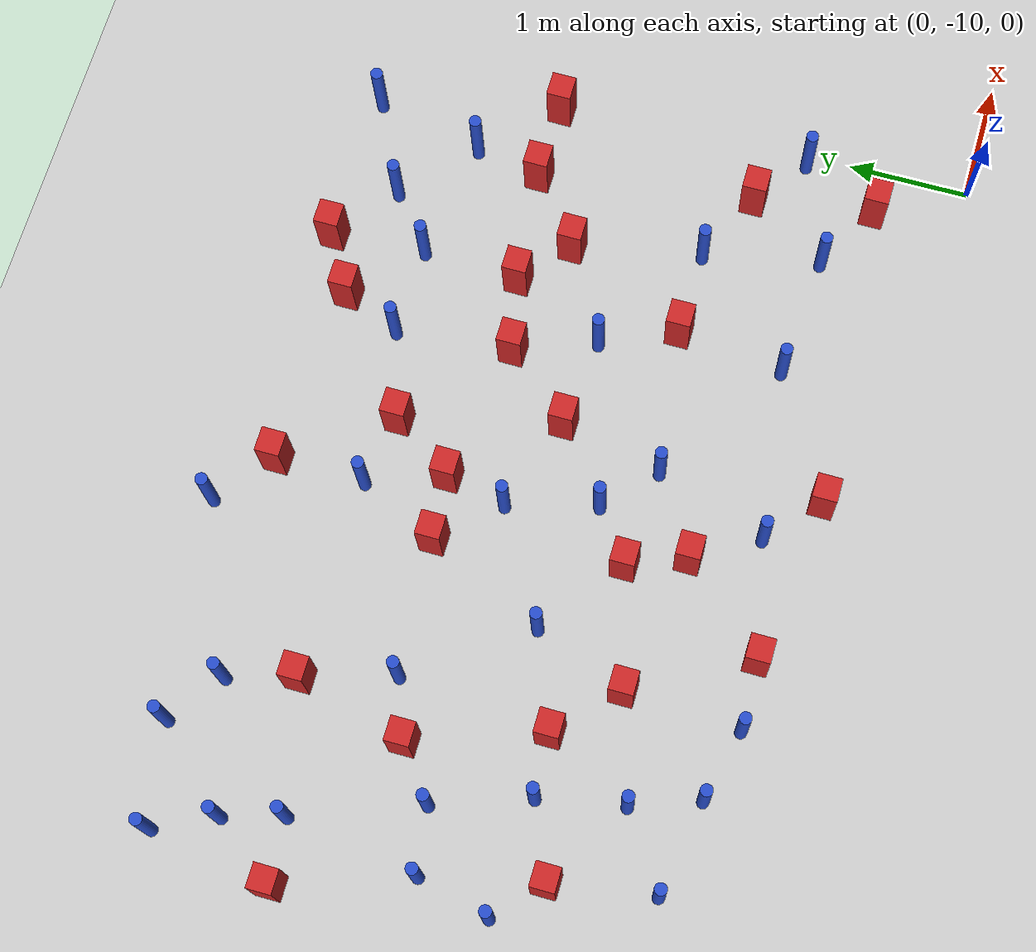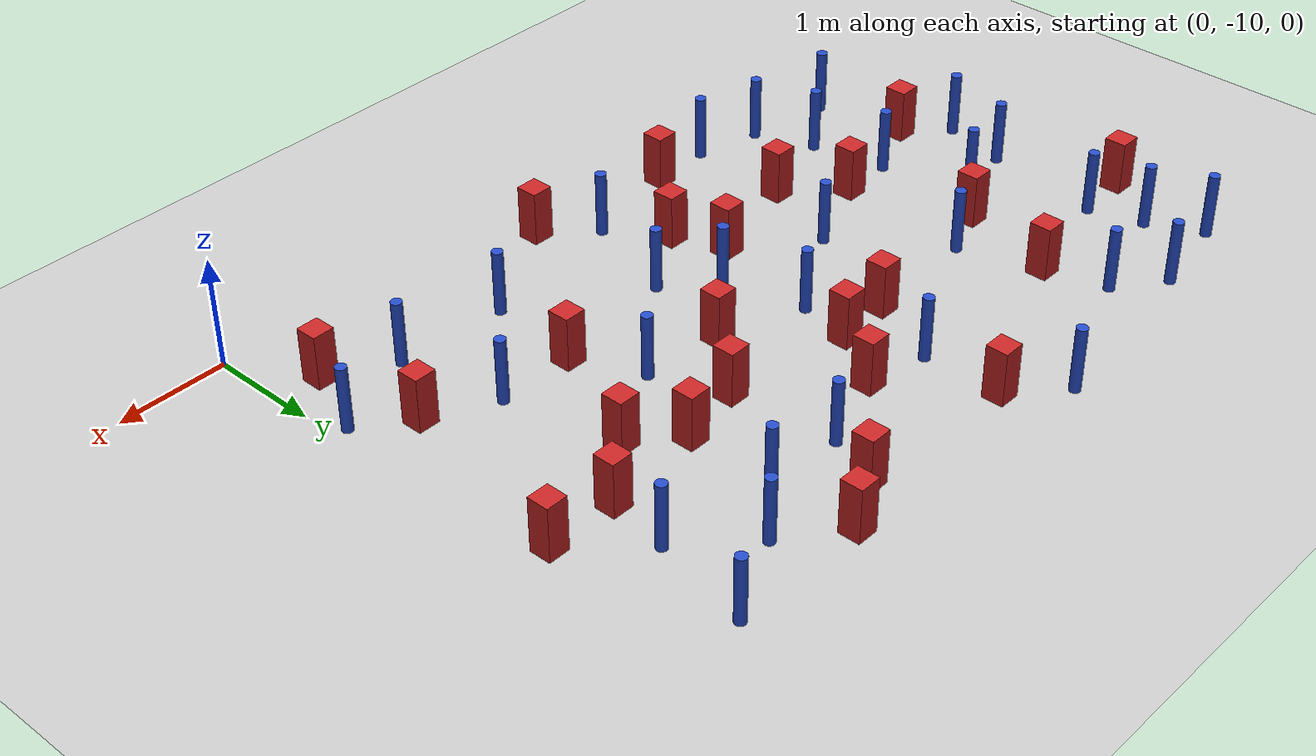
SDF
<sdf version="1.6">
 <world name="default">
  <model name="ground_plane">
   <static>1</static>
   <link name="link">
    <collision name="collision">
     <geometry><plane><normal>0 0 1</normal><size>100 100</size></plane></geometry>
     <surface><friction><ode><mu>100</mu><mu2>50</mu2></ode></friction></surface>
    </collision>
    <visual name="visual">
     <cast_shadows>0</cast_shadows>
     <geometry><plane><normal>0 0 1</normal><size>100 100</size></plane></geometry>
     <material>
      <ambient>1.0 1.0 1.0 1.0</ambient>
      <diffuse>0.8 0.8 0.8 1.0</diffuse>
      <specular>0.01 0.01 0.01 1.000000</specular>
     </material>
    </visual>
   </link>
  </model>
  <model name="square_post_obstacle0">
   <static>true</static>
   <pose>-0.82526668302 -6.51616608075 -6.11067671241e-07 -5.50515727128e-06 -8.79689657224e-07 2.37013304536e-05</pose>
   <link name="link">
    <pose>0 0 0.25 0 -0 0</pose>
    <inertial>
     <mass>100</mass>
     <inertia>
      <ixx>0.166667</ixx>
      <ixy>0</ixy>
      <ixz>0</ixz>
      <iyy>0.166667</iyy>
      <iyz>0</iyz>
      <izz>0.166667</izz>
     </inertia>
    </inertial>
    <collision name="collision"><geometry><box><size>.2 .2 .5</size></box></geometry></collision>
    <visual name="visual">
     <geometry><box><size>.2 .2 .5</size></box></geometry>
     <material>
      <script><name>Gazebo/Red</name><uri>file://media/materials/scripts/gazebo.material</uri></script>
     </material>
    </visual>
   </link>
  </model>
  <model name="square_post_obstacle1">
   <static>true</static>
   <pose>-3.88129026402 -8.10131694386 -6.11067671241e-07 -5.50515727128e-06 -8.79689657224e-07 2.37013304536e-05</pose>
   <link name="link">
    <pose>0 0 0.25 0 -0 0</pose>
    <inertial>
     <mass>100</mass>
     <inertia>
      <ixx>0.166667</ixx>
      <ixy>0</ixy>
      <ixz>0</ixz>
      <iyy>0.166667</iyy>
      <iyz>0</iyz>
      <izz>0.166667</izz>
     </inertia>
    </inertial>
    <collision name="collision"><geometry><box><size>.2 .2 .5</size></box></geometry></collision>
    <visual name="visual">
     <geometry><box><size>.2 .2 .5</size></box></geometry>
     <material>
      <script><name>Gazebo/Red</name><uri>file://media/materials/scripts/gazebo.material</uri></script>
     </material>
    </visual>
   </link>
  </model>
  <model name="pole_obstacle4">
   <static>true</static>
   <pose>-6.0200246371 -5.04161981191 -9.47619616065e-06 5.49618799737e-07 2.36310414037e-07 -1.55090534814e-07</pose>
   <link name="link">
    <pose>0 0 0.3 0 -0 0</pose>
    <inertial>
     <mass>1</mass>
     <inertia><ixx>0.145833</ixx><ixy>0</ixy><ixz>0</ixz><iyy>0.145833</iyy><iyz>0</iyz><izz>0.125</izz></inertia>
    </inertial>
    <collision name="collision">
     <geometry><cylinder><radius>0.05</radius><length>.6</length></cylinder></geometry>
    </collision>
    <visual name="visual">
     <geometry><cylinder><radius>0.05</radius><length>.6</length></cylinder></geometry>
     <material>
      <script><name>Gazebo/Blue</name><uri>file://media/materials/scripts/gazebo.material</uri></script>
     </material>
    </visual>
   </link>
  </model>
  <model name="square_post_obstacle12">
   <static>true</static>
   <pose>-2.37947772336 -6.74591752983 -6.11067671241e-07 -5.50515727128e-06 -8.79689657224e-07 2.37013304536e-05</pose>
   <link name="link">
    <pose>0 0 0.25 0 -0 0</pose>
    <inertial>
     <mass>100</mass>
     <inertia>
      <ixx>0.166667</ixx>
      <ixy>0</ixy>
      <ixz>0</ixz>
      <iyy>0.166667</iyy>
      <iyz>0</iyz>
      <izz>0.166667</izz>
     </inertia>
    </inertial>
    <collision name="collision"><geometry><box><size>.2 .2 .5</size></box></geometry></collision>
    <visual name="visual">
     <geometry><box><size>.2 .2 .5</size></box></geometry>
     <material>
      <script><name>Gazebo/Red</name><uri>file://media/materials/scripts/gazebo.material</uri></script>
     </material>
    </visual>
   </link>
  </model>
  <model name="square_post_obstacle16">
   <static>true</static>
   <pose>-0.392982585008 -9.27894268601 -6.11067671241e-07 -5.50515727128e-06 -8.79689657224e-07 2.37013304536e-05</pose>
   <link name="link">
    <pose>0 0 0.25 0 -0 0</pose>
    <inertial>
     <mass>100</mass>
     <inertia>
      <ixx>0.166667</ixx>
      <ixy>0</ixy>
      <ixz>0</ixz>
      <iyy>0.166667</iyy>
      <iyz>0</iyz>
      <izz>0.166667</izz>
     </inertia>
    </inertial>
    <collision name="collision"><geometry><box><size>.2 .2 .5</size></box></geometry></collision>
    <visual name="visual">
     <geometry><box><size>.2 .2 .5</size></box></geometry>
     <material>
      <script><name>Gazebo/Red</name><uri>file://media/materials/scripts/gazebo.material</uri></script>
     </material>
    </visual>
   </link>
  </model>
  <model name="pole_obstacle11">
   <static>true</static>
   <pose>-3.66469496696 -7.05131863746 -9.4761961606e-06 5.49618799729e-07 2.36310414006e-07 -1.55090534822e-07</pose>
   <link name="link">
    <pose>0 0 0.3 0 -0 0</pose>
    <inertial>
     <mass>1</mass>
     <inertia><ixx>0.145833</ixx><ixy>0</ixy><ixz>0</ixz><iyy>0.145833</iyy><iyz>0</iyz><izz>0.125</izz></inertia>
    </inertial>
    <collision name="collision">
     <geometry><cylinder><radius>0.05</radius><length>.6</length></cylinder></geometry>
    </collision>
    <visual name="visual">
     <geometry><cylinder><radius>0.05</radius><length>.6</length></cylinder></geometry>
     <material>
      <script><name>Gazebo/Blue</name><uri>file://media/materials/scripts/gazebo.material</uri></script>
     </material>
    </visual>
   </link>
  </model>
  <model name="square_post_obstacle27">
   <static>true</static>
   <pose>-5.42633523678 -5.92403966735 -6.11067671241e-07 -5.50515727128e-06 -8.79689657224e-07 2.37013304536e-05</pose>
   <link name="link">
    <pose>0 0 0.25 0 -0 0</pose>
    <inertial>
     <mass>100</mass>
     <inertia>
      <ixx>0.166667</ixx>
      <ixy>0</ixy>
      <ixz>0</ixz>
      <iyy>0.166667</iyy>
      <iyz>0</iyz>
      <izz>0.166667</izz>
     </inertia>
    </inertial>
    <collision name="collision"><geometry><box><size>.2 .2 .5</size></box></geometry></collision>
    <visual name="visual">
     <geometry><box><size>.2 .2 .5</size></box></geometry>
     <material>
      <script><name>Gazebo/Red</name><uri>file://media/materials/scripts/gazebo.material</uri></script>
     </material>
    </visual>
   </link>
  </model>
  <model name="pole_obstacle30">
   <static>true</static>
   <pose>-0.119564074841 -8.64254984837 -9.47619616065e-06 5.49618799737e-07 2.36310414045e-07 -1.5509053481e-07</pose>
   <link name="link">
    <pose>0 0 0.3 0 -0 0</pose>
    <inertial>
     <mass>1</mass>
     <inertia><ixx>0.145833</ixx><ixy>0</ixy><ixz>0</ixz><iyy>0.145833</iyy><iyz>0</iyz><izz>0.125</izz></inertia>
    </inertial>
    <collision name="collision">
     <geometry><cylinder><radius>0.05</radius><length>.6</length></cylinder></geometry>
    </collision>
    <visual name="visual">
     <geometry><cylinder><radius>0.05</radius><length>.6</length></cylinder></geometry>
     <material>
      <script><name>Gazebo/Blue</name><uri>file://media/materials/scripts/gazebo.material</uri></script>
     </material>
    </visual>
   </link>
  </model>
  <model name="pole_obstacle32">
   <static>true</static>
   <pose>-1.74335898194 -5.79831965818 -9.47619616065e-06 5.49618799737e-07 2.36310414061e-07 -1.550905348e-07</pose>
   <link name="link">
    <pose>0 0 0.3 0 -0 0</pose>
    <inertial>
     <mass>1</mass>
     <inertia><ixx>0.145833</ixx><ixy>0</ixy><ixz>0</ixz><iyy>0.145833</iyy><iyz>0</iyz><izz>0.125</izz></inertia>
    </inertial>
    <collision name="collision">
     <geometry><cylinder><radius>0.05</radius><length>.6</length></cylinder></geometry>
    </collision>
    <visual name="visual">
     <geometry><cylinder><radius>0.05</radius><length>.6</length></cylinder></geometry>
     <material>
      <script><name>Gazebo/Blue</name><uri>file://media/materials/scripts/gazebo.material</uri></script>
     </material>
    </visual>
   </link>
  </model>
  <model name="pole_obstacle40">
   <static>true</static>
   <pose>-6.61906579721 -5.6765241384 -9.47619616065e-06 5.49618799737e-07 2.36310414037e-07 -1.55090534814e-07</pose>
   <link name="link">
    <pose>0 0 0.3 0 -0 0</pose>
    <inertial>
     <mass>1</mass>
     <inertia><ixx>0.145833</ixx><ixy>0</ixy><ixz>0</ixz><iyy>0.145833</iyy><iyz>0</iyz><izz>0.125</izz></inertia>
    </inertial>
    <collision name="collision">
     <geometry><cylinder><radius>0.05</radius><length>.6</length></cylinder></geometry>
    </collision>
    <visual name="visual">
     <geometry><cylinder><radius>0.05</radius><length>.6</length></cylinder></geometry>
     <material>
      <script><name>Gazebo/Blue</name><uri>file://media/materials/scripts/gazebo.material</uri></script>
     </material>
    </visual>
   </link>
  </model>
  <model name="square_post_obstacle49">
   <static>true</static>
   <pose>-2.87576029436 -7.3176579303 -6.11067671241e-07 -5.50515727128e-06 -8.79689657224e-07 2.37013304536e-05</pose>
   <link name="link">
    <pose>0 0 0.25 0 -0 0</pose>
    <inertial>
     <mass>100</mass>
     <inertia>
      <ixx>0.166667</ixx>
      <ixy>0</ixy>
      <ixz>0</ixz>
      <iyy>0.166667</iyy>
      <iyz>0</iyz>
      <izz>0.166667</izz>
     </inertia>
    </inertial>
    <collision name="collision"><geometry><box><size>.2 .2 .5</size></box></geometry></collision>
    <visual name="visual">
     <geometry><box><size>.2 .2 .5</size></box></geometry>
     <material>
      <script><name>Gazebo/Red</name><uri>file://media/materials/scripts/gazebo.material</uri></script>
     </material>
    </visual>
   </link>
  </model>
  <model name="pole_obstacle51">
   <static>true</static>
   <pose>-5.50827481223 -9.1733852261 -9.47619616065e-06 5.49618799737e-07 2.36310414065e-07 -1.55090534796e-07</pose>
   <link name="link">
    <pose>0 0 0.3 0 -0 0</pose>
    <inertial>
     <mass>1</mass>
     <inertia><ixx>0.145833</ixx><ixy>0</ixy><ixz>0</ixz><iyy>0.145833</iyy><iyz>0</iyz><izz>0.125</izz></inertia>
    </inertial>
    <collision name="collision">
     <geometry><cylinder><radius>0.05</radius><length>.6</length></cylinder></geometry>
    </collision>
    <visual name="visual">
     <geometry><cylinder><radius>0.05</radius><length>.6</length></cylinder></geometry>
     <material>
      <script><name>Gazebo/Blue</name><uri>file://media/materials/scripts/gazebo.material</uri></script>
     </material>
    </visual>
   </link>
  </model>
  <model name="square_post_obstacle57">
   <static>true</static>
   <pose>-5.68366249613 -6.84988575971 -6.11067671241e-07 -5.50515727128e-06 -8.79689657224e-07 2.37013304536e-05</pose>
   <link name="link">
    <pose>0 0 0.25 0 -0 0</pose>
    <inertial>
     <mass>100</mass>
     <inertia>
      <ixx>0.166667</ixx>
      <ixy>0</ixy>
      <ixz>0</ixz>
      <iyy>0.166667</iyy>
      <iyz>0</iyz>
      <izz>0.166667</izz>
     </inertia>
    </inertial>
    <collision name="collision"><geometry><box><size>.2 .2 .5</size></box></geometry></collision>
    <visual name="visual">
     <geometry><box><size>.2 .2 .5</size></box></geometry>
     <material>
      <script><name>Gazebo/Red</name><uri>file://media/materials/scripts/gazebo.material</uri></script>
     </material>
    </visual>
   </link>
  </model>
  <model name="pole_obstacle58">
   <static>true</static>
   <pose>-6.1062655685 -7.16709813661 -9.47619616065e-06 5.49618799737e-07 2.36310414037e-07 -1.55090534814e-07</pose>
   <link name="link">
    <pose>0 0 0.3 0 -0 0</pose>
    <inertial>
     <mass>1</mass>
     <inertia><ixx>0.145833</ixx><ixy>0</ixy><ixz>0</ixz><iyy>0.145833</iyy><iyz>0</iyz><izz>0.125</izz></inertia>
    </inertial>
    <collision name="collision">
     <geometry><cylinder><radius>0.05</radius><length>.6</length></cylinder></geometry>
    </collision>
    <visual name="visual">
     <geometry><cylinder><radius>0.05</radius><length>.6</length></cylinder></geometry>
     <material>
      <script><name>Gazebo/Blue</name><uri>file://media/materials/scripts/gazebo.material</uri></script>
     </material>
    </visual>
   </link>
  </model>
  <model name="square_post_obstacle62">
   <static>true</static>
   <pose>-2.96274414494 -9.47797529148 -6.11067671241e-07 -5.50515727128e-06 -8.79689657224e-07 2.37013304536e-05</pose>
   <link name="link">
    <pose>0 0 0.25 0 -0 0</pose>
    <inertial>
     <mass>100</mass>
     <inertia>
      <ixx>0.166667</ixx>
      <ixy>0</ixy>
      <ixz>0</ixz>
      <iyy>0.166667</iyy>
      <iyz>0</iyz>
      <izz>0.166667</izz>
     </inertia>
    </inertial>
    <collision name="collision"><geometry><box><size>.2 .2 .5</size></box></geometry></collision>
    <visual name="visual">
     <geometry><box><size>.2 .2 .5</size></box></geometry>
     <material>
      <script><name>Gazebo/Red</name><uri>file://media/materials/scripts/gazebo.material</uri></script>
     </material>
    </visual>
   </link>
  </model>
  <model name="pole_obstacle62">
   <static>true</static>
   <pose>-1.15837188094 -8.01421172298 -9.47619616065e-06 5.49618799737e-07 2.36310414013e-07 -1.55090534827e-07</pose>
   <link name="link">
    <pose>0 0 0.3 0 -0 0</pose>
    <inertial>
     <mass>1</mass>
     <inertia><ixx>0.145833</ixx><ixy>0</ixy><ixz>0</ixz><iyy>0.145833</iyy><iyz>0</iyz><izz>0.125</izz></inertia>
    </inertial>
    <collision name="collision">
     <geometry><cylinder><radius>0.05</radius><length>.6</length></cylinder></geometry>
    </collision>
    <visual name="visual">
     <geometry><cylinder><radius>0.05</radius><length>.6</length></cylinder></geometry>
     <material>
      <script><name>Gazebo/Blue</name><uri>file://media/materials/scripts/gazebo.material</uri></script>
     </material>
    </visual>
   </link>
  </model>
  <model name="pole_obstacle79">
   <static>true</static>
   <pose>-3.46852922734 -7.78371165621 -9.4761961606e-06 5.49618799729e-07 2.36310414006e-07 -1.55090534822e-07</pose>
   <link name="link">
    <pose>0 0 0.3 0 -0 0</pose>
    <inertial>
     <mass>1</mass>
     <inertia><ixx>0.145833</ixx><ixy>0</ixy><ixz>0</ixz><iyy>0.145833</iyy><iyz>0</iyz><izz>0.125</izz></inertia>
    </inertial>
    <collision name="collision">
     <geometry><cylinder><radius>0.05</radius><length>.6</length></cylinder></geometry>
    </collision>
    <visual name="visual">
     <geometry><cylinder><radius>0.05</radius><length>.6</length></cylinder></geometry>
     <material>
      <script><name>Gazebo/Blue</name><uri>file://media/materials/scripts/gazebo.material</uri></script>
     </material>
    </visual>
   </link>
  </model>
  <model name="square_post_obstacle79">
   <static>true</static>
   <pose>-4.0834787052 -6.5964605706 -6.11067671241e-07 -5.50515727128e-06 -8.79689657224e-07 2.37013304536e-05</pose>
   <link name="link">
    <pose>0 0 0.25 0 -0 0</pose>
    <inertial>
     <mass>100</mass>
     <inertia>
      <ixx>0.166667</ixx>
      <ixy>0</ixy>
      <ixz>0</ixz>
      <iyy>0.166667</iyy>
      <iyz>0</iyz>
      <izz>0.166667</izz>
     </inertia>
    </inertial>
    <collision name="collision"><geometry><box><size>.2 .2 .5</size></box></geometry></collision>
    <visual name="visual">
     <geometry><box><size>.2 .2 .5</size></box></geometry>
     <material>
      <script><name>Gazebo/Red</name><uri>file://media/materials/scripts/gazebo.material</uri></script>
     </material>
    </visual>
   </link>
  </model>
  <model name="pole_obstacle83">
   <static>true</static>
   <pose>-6.48095813241 -6.16234754726 -9.47619616065e-06 5.49618799737e-07 2.36310414037e-07 -1.55090534814e-07</pose>
   <link name="link">
    <pose>0 0 0.3 0 -0 0</pose>
    <inertial>
     <mass>1</mass>
     <inertia><ixx>0.145833</ixx><ixy>0</ixy><ixz>0</ixz><iyy>0.145833</iyy><iyz>0</iyz><izz>0.125</izz></inertia>
    </inertial>
    <collision name="collision">
     <geometry><cylinder><radius>0.05</radius><length>.6</length></cylinder></geometry>
    </collision>
    <visual name="visual">
     <geometry><cylinder><radius>0.05</radius><length>.6</length></cylinder></geometry>
     <material>
      <script><name>Gazebo/Blue</name><uri>file://media/materials/scripts/gazebo.material</uri></script>
     </material>
    </visual>
   </link>
  </model>
  <model name="square_post_obstacle82">
   <static>true</static>
   <pose>-3.77693955215 -5.19423456847 -6.11067671241e-07 -5.50515727128e-06 -8.79689657224e-07 2.37013304536e-05</pose>
   <link name="link">
    <pose>0 0 0.25 0 -0 0</pose>
    <inertial>
     <mass>100</mass>
     <inertia>
      <ixx>0.166667</ixx>
      <ixy>0</ixy>
      <ixz>0</ixz>
      <iyy>0.166667</iyy>
      <iyz>0</iyz>
      <izz>0.166667</izz>
     </inertia>
    </inertial>
    <collision name="collision"><geometry><box><size>.2 .2 .5</size></box></geometry></collision>
    <visual name="visual">
     <geometry><box><size>.2 .2 .5</size></box></geometry>
     <material>
      <script><name>Gazebo/Red</name><uri>file://media/materials/scripts/gazebo.material</uri></script>
     </material>
    </visual>
   </link>
  </model>
  <model name="square_post_obstacle83">
   <static>true</static>
   <pose>-6.42572421261 -8.19879656804 -6.11067671241e-07 -5.50515727128e-06 -8.79689657224e-07 2.37013304536e-05</pose>
   <link name="link">
    <pose>0 0 0.25 0 -0 0</pose>
    <inertial>
     <mass>100</mass>
     <inertia>
      <ixx>0.166667</ixx>
      <ixy>0</ixy>
      <ixz>0</ixz>
      <iyy>0.166667</iyy>
      <iyz>0</iyz>
      <izz>0.166667</izz>
     </inertia>
    </inertial>
    <collision name="collision"><geometry><box><size>.2 .2 .5</size></box></geometry></collision>
    <visual name="visual">
     <geometry><box><size>.2 .2 .5</size></box></geometry>
     <material>
      <script><name>Gazebo/Red</name><uri>file://media/materials/scripts/gazebo.material</uri></script>
     </material>
    </visual>
   </link>
  </model>
  <model name="square_post_obstacle85">
   <static>true</static>
   <pose>-5.31994411945 -7.90932693264 -6.11067671241e-07 -5.50515727128e-06 -8.79689657224e-07 2.37013304536e-05</pose>
   <link name="link">
    <pose>0 0 0.25 0 -0 0</pose>
    <inertial>
     <mass>100</mass>
     <inertia>
      <ixx>0.166667</ixx>
      <ixy>0</ixy>
      <ixz>0</ixz>
      <iyy>0.166667</iyy>
      <iyz>0</iyz>
      <izz>0.166667</izz>
     </inertia>
    </inertial>
    <collision name="collision"><geometry><box><size>.2 .2 .5</size></box></geometry></collision>
    <visual name="visual">
     <geometry><box><size>.2 .2 .5</size></box></geometry>
     <material>
      <script><name>Gazebo/Red</name><uri>file://media/materials/scripts/gazebo.material</uri></script>
     </material>
    </visual>
   </link>
  </model>
  <model name="pole_obstacle99">
   <static>true</static>
   <pose>-6.79168398154 -7.85477120546 -9.47619616065e-06 5.49618799737e-07 2.36310414037e-07 -1.55090534814e-07</pose>
   <link name="link">
    <pose>0 0 0.3 0 -0 0</pose>
    <inertial>
     <mass>1</mass>
     <inertia><ixx>0.145833</ixx><ixy>0</ixy><ixz>0</ixz><iyy>0.145833</iyy><iyz>0</iyz><izz>0.125</izz></inertia>
    </inertial>
    <collision name="collision">
     <geometry><cylinder><radius>0.05</radius><length>.6</length></cylinder></geometry>
    </collision>
    <visual name="visual">
     <geometry><cylinder><radius>0.05</radius><length>.6</length></cylinder></geometry>
     <material>
      <script><name>Gazebo/Blue</name><uri>file://media/materials/scripts/gazebo.material</uri></script>
     </material>
    </visual>
   </link>
  </model>
  <model name="square_post_obstacle89">
   <static>true</static>
   <pose>-0.554314988067 -8.2952666971 -6.11067671241e-07 -5.50515727128e-06 -8.79689657224e-07 2.37013304536e-05</pose>
   <link name="link">
    <pose>0 0 0.25 0 -0 0</pose>
    <inertial>
     <mass>100</mass>
     <inertia>
      <ixx>0.166667</ixx>
      <ixy>0</ixy>
      <ixz>0</ixz>
      <iyy>0.166667</iyy>
      <iyz>0</iyz>
      <izz>0.166667</izz>
     </inertia>
    </inertial>
    <collision name="collision"><geometry><box><size>.2 .2 .5</size></box></geometry></collision>
    <visual name="visual">
     <geometry><box><size>.2 .2 .5</size></box></geometry>
     <material>
      <script><name>Gazebo/Red</name><uri>file://media/materials/scripts/gazebo.material</uri></script>
     </material>
    </visual>
   </link>
  </model>
  <model name="pole_obstacle102">
   <static>true</static>
   <pose>-1.97217639003 -8.89279840487 -9.47619616065e-06 5.49618799737e-07 2.36310414046e-07 -1.55090534809e-07</pose>
   <link name="link">
    <pose>0 0 0.3 0 -0 0</pose>
    <inertial>
     <mass>1</mass>
     <inertia><ixx>0.145833</ixx><ixy>0</ixy><ixz>0</ixz><iyy>0.145833</iyy><iyz>0</iyz><izz>0.125</izz></inertia>
    </inertial>
    <collision name="collision">
     <geometry><cylinder><radius>0.05</radius><length>.6</length></cylinder></geometry>
    </collision>
    <visual name="visual">
     <geometry><cylinder><radius>0.05</radius><length>.6</length></cylinder></geometry>
     <material>
      <script><name>Gazebo/Blue</name><uri>file://media/materials/scripts/gazebo.material</uri></script>
     </material>
    </visual>
   </link>
  </model>
  <model name="square_post_obstacle91">
   <static>true</static>
   <pose>-1.37438749535 -6.96035190582 -6.11067671241e-07 -5.50515727128e-06 -8.79689657224e-07 2.37013304536e-05</pose>
   <link name="link">
    <pose>0 0 0.25 0 -0 0</pose>
    <inertial>
     <mass>100</mass>
     <inertia>
      <ixx>0.166667</ixx>
      <ixy>0</ixy>
      <ixz>0</ixz>
      <iyy>0.166667</iyy>
      <iyz>0</iyz>
      <izz>0.166667</izz>
     </inertia>
    </inertial>
    <collision name="collision"><geometry><box><size>.2 .2 .5</size></box></geometry></collision>
    <visual name="visual">
     <geometry><box><size>.2 .2 .5</size></box></geometry>
     <material>
      <script><name>Gazebo/Red</name><uri>file://media/materials/scripts/gazebo.material</uri></script>
     </material>
    </visual>
   </link>
  </model>
  <model name="pole_obstacle108">
   <static>true</static>
   <pose>-4.559576048 -7.58738592434 -9.47619616065e-06 5.49618799737e-07 2.36310414037e-07 -1.55090534814e-07</pose>
   <link name="link">
    <pose>0 0 0.3 0 -0 0</pose>
    <inertial>
     <mass>1</mass>
     <inertia><ixx>0.145833</ixx><ixy>0</ixy><ixz>0</ixz><iyy>0.145833</iyy><iyz>0</iyz><izz>0.125</izz></inertia>
    </inertial>
    <collision name="collision">
     <geometry><cylinder><radius>0.05</radius><length>.6</length></cylinder></geometry>
    </collision>
    <visual name="visual">
     <geometry><cylinder><radius>0.05</radius><length>.6</length></cylinder></geometry>
     <material>
      <script><name>Gazebo/Blue</name><uri>file://media/materials/scripts/gazebo.material</uri></script>
     </material>
    </visual>
   </link>
  </model>
  <model name="pole_obstacle113">
   <static>true</static>
   <pose>-4.90973229337 -9.31652217116 -9.47619616065e-06 5.49618799737e-07 2.36310414065e-07 -1.55090534796e-07</pose>
   <link name="link">
    <pose>0 0 0.3 0 -0 0</pose>
    <inertial>
     <mass>1</mass>
     <inertia><ixx>0.145833</ixx><ixy>0</ixy><ixz>0</ixz><iyy>0.145833</iyy><iyz>0</iyz><izz>0.125</izz></inertia>
    </inertial>
    <collision name="collision">
     <geometry><cylinder><radius>0.05</radius><length>.6</length></cylinder></geometry>
    </collision>
    <visual name="visual">
     <geometry><cylinder><radius>0.05</radius><length>.6</length></cylinder></geometry>
     <material>
      <script><name>Gazebo/Blue</name><uri>file://media/materials/scripts/gazebo.material</uri></script>
     </material>
    </visual>
   </link>
  </model>
  <model name="square_post_obstacle100">
   <static>true</static>
   <pose>-3.69509242766 -8.5743412997 -6.11067671241e-07 -5.50515727128e-06 -8.79689657224e-07 2.37013304536e-05</pose>
   <link name="link">
    <pose>0 0 0.25 0 -0 0</pose>
    <inertial>
     <mass>100</mass>
     <inertia>
      <ixx>0.166667</ixx>
      <ixy>0</ixy>
      <ixz>0</ixz>
      <iyy>0.166667</iyy>
      <iyz>0</iyz>
      <izz>0.166667</izz>
     </inertia>
    </inertial>
    <collision name="collision"><geometry><box><size>.2 .2 .5</size></box></geometry></collision>
    <visual name="visual">
     <geometry><box><size>.2 .2 .5</size></box></geometry>
     <material>
      <script><name>Gazebo/Red</name><uri>file://media/materials/scripts/gazebo.material</uri></script>
     </material>
    </visual>
   </link>
  </model>
  <model name="square_post_obstacle106">
   <static>true</static>
   <pose>-4.85469032865 -8.36135327256 -6.11067671241e-07 -5.50515727128e-06 -8.79689657224e-07 2.37013304536e-05</pose>
   <link name="link">
    <pose>0 0 0.25 0 -0 0</pose>
    <inertial>
     <mass>100</mass>
     <inertia>
      <ixx>0.166667</ixx>
      <ixy>0</ixy>
      <ixz>0</ixz>
      <iyy>0.166667</iyy>
      <iyz>0</iyz>
      <izz>0.166667</izz>
     </inertia>
    </inertial>
    <collision name="collision"><geometry><box><size>.2 .2 .5</size></box></geometry></collision>
    <visual name="visual">
     <geometry><box><size>.2 .2 .5</size></box></geometry>
     <material>
      <script><name>Gazebo/Red</name><uri>file://media/materials/scripts/gazebo.material</uri></script>
     </material>
    </visual>
   </link>
  </model>
  <model name="pole_obstacle127">
   <static>true</static>
   <pose>-4.23892632393 -4.80365582336 -9.47619616065e-06 5.49618799737e-07 2.36310414037e-07 -1.55090534814e-07</pose>
   <link name="link">
    <pose>0 0 0.3 0 -0 0</pose>
    <inertial>
     <mass>1</mass>
     <inertia><ixx>0.145833</ixx><ixy>0</ixy><ixz>0</ixz><iyy>0.145833</iyy><iyz>0</iyz><izz>0.125</izz></inertia>
    </inertial>
    <collision name="collision">
     <geometry><cylinder><radius>0.05</radius><length>.6</length></cylinder></geometry>
    </collision>
    <visual name="visual">
     <geometry><cylinder><radius>0.05</radius><length>.6</length></cylinder></geometry>
     <material>
      <script><name>Gazebo/Blue</name><uri>file://media/materials/scripts/gazebo.material</uri></script>
     </material>
    </visual>
   </link>
  </model>
  <model name="pole_obstacle137">
   <static>true</static>
   <pose>-6.64197439709 -7.2507906841 -9.47619616065e-06 5.49618799737e-07 2.36310414037e-07 -1.55090534814e-07</pose>
   <link name="link">
    <pose>0 0 0.3 0 -0 0</pose>
    <inertial>
     <mass>1</mass>
     <inertia><ixx>0.145833</ixx><ixy>0</ixy><ixz>0</ixz><iyy>0.145833</iyy><iyz>0</iyz><izz>0.125</izz></inertia>
    </inertial>
    <collision name="collision">
     <geometry><cylinder><radius>0.05</radius><length>.6</length></cylinder></geometry>
    </collision>
    <visual name="visual">
     <geometry><cylinder><radius>0.05</radius><length>.6</length></cylinder></geometry>
     <material>
      <script><name>Gazebo/Blue</name><uri>file://media/materials/scripts/gazebo.material</uri></script>
     </material>
    </visual>
   </link>
  </model>
  <model name="square_post_obstacle121">
   <static>true</static>
   <pose>-6.998031363 -6.20695497516 -6.11067671241e-07 -5.50515727128e-06 -8.79689657224e-07 2.37013304536e-05</pose>
   <link name="link">
    <pose>0 0 0.25 0 -0 0</pose>
    <inertial>
     <mass>100</mass>
     <inertia>
      <ixx>0.166667</ixx>
      <ixy>0</ixy>
      <ixz>0</ixz>
      <iyy>0.166667</iyy>
      <iyz>0</iyz>
      <izz>0.166667</izz>
     </inertia>
    </inertial>
    <collision name="collision"><geometry><box><size>.2 .2 .5</size></box></geometry></collision>
    <visual name="visual">
     <geometry><box><size>.2 .2 .5</size></box></geometry>
     <material>
      <script><name>Gazebo/Red</name><uri>file://media/materials/scripts/gazebo.material</uri></script>
     </material>
    </visual>
   </link>
  </model>
  <model name="square_post_obstacle126">
   <static>true</static>
   <pose>-3.55461608547 -6.55177268494 -6.11067671241e-07 -5.50515727128e-06 -8.79689657224e-07 2.37013304536e-05</pose>
   <link name="link">
    <pose>0 0 0.25 0 -0 0</pose>
    <inertial>
     <mass>100</mass>
     <inertia>
      <ixx>0.166667</ixx>
      <ixy>0</ixy>
      <ixz>0</ixz>
      <iyy>0.166667</iyy>
      <iyz>0</iyz>
      <izz>0.166667</izz>
     </inertia>
    </inertial>
    <collision name="collision"><geometry><box><size>.2 .2 .5</size></box></geometry></collision>
    <visual name="visual">
     <geometry><box><size>.2 .2 .5</size></box></geometry>
     <material>
      <script><name>Gazebo/Red</name><uri>file://media/materials/scripts/gazebo.material</uri></script>
     </material>
    </visual>
   </link>
  </model>
  <model name="square_post_obstacle133">
   <static>true</static>
   <pose>-1.79227719618 -5.02996712042 -6.11067671241e-07 -5.50515727128e-06 -8.79689657224e-07 2.37013304536e-05</pose>
   <link name="link">
    <pose>0 0 0.25 0 -0 0</pose>
    <inertial>
     <mass>100</mass>
     <inertia>
      <ixx>0.166667</ixx>
      <ixy>0</ixy>
      <ixz>0</ixz>
      <iyy>0.166667</iyy>
      <iyz>0</iyz>
      <izz>0.166667</izz>
     </inertia>
    </inertial>
    <collision name="collision"><geometry><box><size>.2 .2 .5</size></box></geometry></collision>
    <visual name="visual">
     <geometry><box><size>.2 .2 .5</size></box></geometry>
     <material>
      <script><name>Gazebo/Red</name><uri>file://media/materials/scripts/gazebo.material</uri></script>
     </material>
    </visual>
   </link>
  </model>
  <model name="pole_obstacle144">
   <static>true</static>
   <pose>-0.535693109123 -5.05032521116 -9.47619616065e-06 5.49618799737e-07 2.36310414069e-07 -1.55090534794e-07</pose>
   <link name="link">
    <pose>0 0 0.3 0 -0 0</pose>
    <inertial>
     <mass>1</mass>
     <inertia><ixx>0.145833</ixx><ixy>0</ixy><ixz>0</ixz><iyy>0.145833</iyy><iyz>0</iyz><izz>0.125</izz></inertia>
    </inertial>
    <collision name="collision">
     <geometry><cylinder><radius>0.05</radius><length>.6</length></cylinder></geometry>
    </collision>
    <visual name="visual">
     <geometry><cylinder><radius>0.05</radius><length>.6</length></cylinder></geometry>
     <material>
      <script><name>Gazebo/Blue</name><uri>file://media/materials/scripts/gazebo.material</uri></script>
     </material>
    </visual>
   </link>
  </model>
  <model name="pole_obstacle146">
   <static>true</static>
   <pose>-3.78231242451 -5.92231459783 -9.47619616065e-06 5.49618799738e-07 2.3631041406e-07 -1.55090534801e-07</pose>
   <link name="link">
    <pose>0 0 0.3 0 -0 0</pose>
    <inertial>
     <mass>1</mass>
     <inertia><ixx>0.145833</ixx><ixy>0</ixy><ixz>0</ixz><iyy>0.145833</iyy><iyz>0</iyz><izz>0.125</izz></inertia>
    </inertial>
    <collision name="collision">
     <geometry><cylinder><radius>0.05</radius><length>.6</length></cylinder></geometry>
    </collision>
    <visual name="visual">
     <geometry><cylinder><radius>0.05</radius><length>.6</length></cylinder></geometry>
     <material>
      <script><name>Gazebo/Blue</name><uri>file://media/materials/scripts/gazebo.material</uri></script>
     </material>
    </visual>
   </link>
  </model>
  <model name="square_post_obstacle139">
   <static>true</static>
   <pose>-3.19951023633 -6.03275241118 -6.11067671241e-07 -5.50515727128e-06 -8.79689657224e-07 2.37013304536e-05</pose>
   <link name="link">
    <pose>0 0 0.25 0 -0 0</pose>
    <inertial>
     <mass>100</mass>
     <inertia>
      <ixx>0.166667</ixx>
      <ixy>0</ixy>
      <ixz>0</ixz>
      <iyy>0.166667</iyy>
      <iyz>0</iyz>
      <izz>0.166667</izz>
     </inertia>
    </inertial>
    <collision name="collision"><geometry><box><size>.2 .2 .5</size></box></geometry></collision>
    <visual name="visual">
     <geometry><box><size>.2 .2 .5</size></box></geometry>
     <material>
      <script><name>Gazebo/Red</name><uri>file://media/materials/scripts/gazebo.material</uri></script>
     </material>
    </visual>
   </link>
  </model>
  <model name="pole_obstacle151">
   <static>true</static>
   <pose>-5.21384538561 -6.65838239411 -9.47619616065e-06 5.49618799737e-07 2.36310414037e-07 -1.55090534814e-07</pose>
   <link name="link">
    <pose>0 0 0.3 0 -0 0</pose>
    <inertial>
     <mass>1</mass>
     <inertia><ixx>0.145833</ixx><ixy>0</ixy><ixz>0</ixz><iyy>0.145833</iyy><iyz>0</iyz><izz>0.125</izz></inertia>
    </inertial>
    <collision name="collision">
     <geometry><cylinder><radius>0.05</radius><length>.6</length></cylinder></geometry>
    </collision>
    <visual name="visual">
     <geometry><cylinder><radius>0.05</radius><length>.6</length></cylinder></geometry>
     <material>
      <script><name>Gazebo/Blue</name><uri>file://media/materials/scripts/gazebo.material</uri></script>
     </material>
    </visual>
   </link>
  </model>
  <model name="pole_obstacle154">
   <static>true</static>
   <pose>-2.13472009818 -7.39597728731 -9.47619616065e-06 5.49618799738e-07 2.3631041406e-07 -1.55090534801e-07</pose>
   <link name="link">
    <pose>0 0 0.3 0 -0 0</pose>
    <inertial>
     <mass>1</mass>
     <inertia><ixx>0.145833</ixx><ixy>0</ixy><ixz>0</ixz><iyy>0.145833</iyy><iyz>0</iyz><izz>0.125</izz></inertia>
    </inertial>
    <collision name="collision">
     <geometry><cylinder><radius>0.05</radius><length>.6</length></cylinder></geometry>
    </collision>
    <visual name="visual">
     <geometry><cylinder><radius>0.05</radius><length>.6</length></cylinder></geometry>
     <material>
      <script><name>Gazebo/Blue</name><uri>file://media/materials/scripts/gazebo.material</uri></script>
     </material>
    </visual>
   </link>
  </model>
  <model name="pole_obstacle157">
   <static>true</static>
   <pose>-0.959400435353 -8.96827257741 -9.47619616065e-06 5.49618799737e-07 2.36310414038e-07 -1.55090534814e-07</pose>
   <link name="link">
    <pose>0 0 0.3 0 -0 0</pose>
    <inertial>
     <mass>1</mass>
     <inertia><ixx>0.145833</ixx><ixy>0</ixy><ixz>0</ixz><iyy>0.145833</iyy><iyz>0</iyz><izz>0.125</izz></inertia>
    </inertial>
    <collision name="collision">
     <geometry><cylinder><radius>0.05</radius><length>.6</length></cylinder></geometry>
    </collision>
    <visual name="visual">
     <geometry><cylinder><radius>0.05</radius><length>.6</length></cylinder></geometry>
     <material>
      <script><name>Gazebo/Blue</name><uri>file://media/materials/scripts/gazebo.material</uri></script>
     </material>
    </visual>
   </link>
  </model>
  <model name="pole_obstacle158">
   <static>true</static>
   <pose>-1.29117497299 -5.42888227003 -9.47619616065e-06 5.49618799737e-07 2.36310414061e-07 -1.550905348e-07</pose>
   <link name="link">
    <pose>0 0 0.3 0 -0 0</pose>
    <inertial>
     <mass>1</mass>
     <inertia><ixx>0.145833</ixx><ixy>0</ixy><ixz>0</ixz><iyy>0.145833</iyy><iyz>0</iyz><izz>0.125</izz></inertia>
    </inertial>
    <collision name="collision">
     <geometry><cylinder><radius>0.05</radius><length>.6</length></cylinder></geometry>
    </collision>
    <visual name="visual">
     <geometry><cylinder><radius>0.05</radius><length>.6</length></cylinder></geometry>
     <material>
      <script><name>Gazebo/Blue</name><uri>file://media/materials/scripts/gazebo.material</uri></script>
     </material>
    </visual>
   </link>
  </model>
  <model name="square_post_obstacle156">
   <static>true</static>
   <pose>-1.77088830943 -6.61224625859 -6.11067671241e-07 -5.50515727128e-06 -8.79689657224e-07 2.37013304536e-05</pose>
   <link name="link">
    <pose>0 0 0.25 0 -0 0</pose>
    <inertial>
     <mass>100</mass>
     <inertia>
      <ixx>0.166667</ixx>
      <ixy>0</ixy>
      <ixz>0</ixz>
      <iyy>0.166667</iyy>
      <iyz>0</iyz>
      <izz>0.166667</izz>
     </inertia>
    </inertial>
    <collision name="collision"><geometry><box><size>.2 .2 .5</size></box></geometry></collision>
    <visual name="visual">
     <geometry><box><size>.2 .2 .5</size></box></geometry>
     <material>
      <script><name>Gazebo/Red</name><uri>file://media/materials/scripts/gazebo.material</uri></script>
     </material>
    </visual>
   </link>
  </model>
  <model name="pole_obstacle172">
   <static>true</static>
   <pose>-6.8476229766 -5.19476011041 -9.47619616065e-06 5.49618799737e-07 2.36310414037e-07 -1.55090534814e-07</pose>
   <link name="link">
    <pose>0 0 0.3 0 -0 0</pose>
    <inertial>
     <mass>1</mass>
     <inertia><ixx>0.145833</ixx><ixy>0</ixy><ixz>0</ixz><iyy>0.145833</iyy><iyz>0</iyz><izz>0.125</izz></inertia>
    </inertial>
    <collision name="collision">
     <geometry><cylinder><radius>0.05</radius><length>.6</length></cylinder></geometry>
    </collision>
    <visual name="visual">
     <geometry><cylinder><radius>0.05</radius><length>.6</length></cylinder></geometry>
     <material>
      <script><name>Gazebo/Blue</name><uri>file://media/materials/scripts/gazebo.material</uri></script>
     </material>
    </visual>
   </link>
  </model>
  <model name="square_post_obstacle169">
   <static>true</static>
   <pose>-4.33800036405 -9.29576236433 -6.11067671241e-07 -5.50515727128e-06 -8.79689657224e-07 2.37013304536e-05</pose>
   <link name="link">
    <pose>0 0 0.25 0 -0 0</pose>
    <inertial>
     <mass>100</mass>
     <inertia>
      <ixx>0.166667</ixx>
      <ixy>0</ixy>
      <ixz>0</ixz>
      <iyy>0.166667</iyy>
      <iyz>0</iyz>
      <izz>0.166667</izz>
     </inertia>
    </inertial>
    <collision name="collision"><geometry><box><size>.2 .2 .5</size></box></geometry></collision>
    <visual name="visual">
     <geometry><box><size>.2 .2 .5</size></box></geometry>
     <material>
      <script><name>Gazebo/Red</name><uri>file://media/materials/scripts/gazebo.material</uri></script>
     </material>
    </visual>
   </link>
  </model>
  <model name="pole_obstacle179">
   <static>true</static>
   <pose>-2.48067889215 -5.77758499904 -9.47619616065e-06 5.49618799738e-07 2.3631041406e-07 -1.55090534801e-07</pose>
   <link name="link">
    <pose>0 0 0.3 0 -0 0</pose>
    <inertial>
     <mass>1</mass>
     <inertia><ixx>0.145833</ixx><ixy>0</ixy><ixz>0</ixz><iyy>0.145833</iyy><iyz>0</iyz><izz>0.125</izz></inertia>
    </inertial>
    <collision name="collision">
     <geometry><cylinder><radius>0.05</radius><length>.6</length></cylinder></geometry>
    </collision>
    <visual name="visual">
     <geometry><cylinder><radius>0.05</radius><length>.6</length></cylinder></geometry>
     <material>
      <script><name>Gazebo/Blue</name><uri>file://media/materials/scripts/gazebo.material</uri></script>
     </material>
    </visual>
   </link>
  </model>
  <model name="pole_obstacle180">
   <static>true</static>
   <pose>-5.70621513056 -8.63052883563 -9.47619616065e-06 5.49618799737e-07 2.36310414065e-07 -1.55090534796e-07</pose>
   <link name="link">
    <pose>0 0 0.3 0 -0 0</pose>
    <inertial>
     <mass>1</mass>
     <inertia><ixx>0.145833</ixx><ixy>0</ixy><ixz>0</ixz><iyy>0.145833</iyy><iyz>0</iyz><izz>0.125</izz></inertia>
    </inertial>
    <collision name="collision">
     <geometry><cylinder><radius>0.05</radius><length>.6</length></cylinder></geometry>
    </collision>
    <visual name="visual">
     <geometry><cylinder><radius>0.05</radius><length>.6</length></cylinder></geometry>
     <material>
      <script><name>Gazebo/Blue</name><uri>file://media/materials/scripts/gazebo.material</uri></script>
     </material>
    </visual>
   </link>
  </model>
  <model name="square_post_obstacle183">
   <static>true</static>
   <pose>-0.179806260776 -6.52896288453 -6.11067671241e-07 -5.50515727128e-06 -8.79689657224e-07 2.37013304536e-05</pose>
   <link name="link">
    <pose>0 0 0.25 0 -0 0</pose>
    <inertial>
     <mass>100</mass>
     <inertia>
      <ixx>0.166667</ixx>
      <ixy>0</ixy>
      <ixz>0</ixz>
      <iyy>0.166667</iyy>
      <iyz>0</iyz>
      <izz>0.166667</izz>
     </inertia>
    </inertial>
    <collision name="collision"><geometry><box><size>.2 .2 .5</size></box></geometry></collision>
    <visual name="visual">
     <geometry><box><size>.2 .2 .5</size></box></geometry>
     <material>
      <script><name>Gazebo/Red</name><uri>file://media/materials/scripts/gazebo.material</uri></script>
     </material>
    </visual>
   </link>
  </model>
  <model name="square_post_obstacle196">
   <static>true</static>
   <pose>-1.86267934153 -8.0042273218 -6.11067671241e-07 -5.50515727128e-06 -8.79689657224e-07 2.37013304536e-05</pose>
   <link name="link">
    <pose>0 0 0.25 0 -0 0</pose>
    <inertial>
     <mass>100</mass>
     <inertia>
      <ixx>0.166667</ixx>
      <ixy>0</ixy>
      <ixz>0</ixz>
      <iyy>0.166667</iyy>
      <iyz>0</iyz>
      <izz>0.166667</izz>
     </inertia>
    </inertial>
    <collision name="collision"><geometry><box><size>.2 .2 .5</size></box></geometry></collision>
    <visual name="visual">
     <geometry><box><size>.2 .2 .5</size></box></geometry>
     <material>
      <script><name>Gazebo/Red</name><uri>file://media/materials/scripts/gazebo.material</uri></script>
     </material>
    </visual>
   </link>
  </model>
  <model name="square_post_obstacle205">
   <static>true</static>
   <pose>-2.26909921055 -5.30474510682 -6.11067671241e-07 -5.50515727128e-06 -8.79689657224e-07 2.37013304536e-05</pose>
   <link name="link">
    <pose>0 0 0.25 0 -0 0</pose>
    <inertial>
     <mass>100</mass>
     <inertia>
      <ixx>0.166667</ixx>
      <ixy>0</ixy>
      <ixz>0</ixz>
      <iyy>0.166667</iyy>
      <iyz>0</iyz>
      <izz>0.166667</izz>
     </inertia>
    </inertial>
    <collision name="collision"><geometry><box><size>.2 .2 .5</size></box></geometry></collision>
    <visual name="visual">
     <geometry><box><size>.2 .2 .5</size></box></geometry>
     <material>
      <script><name>Gazebo/Red</name><uri>file://media/materials/scripts/gazebo.material</uri></script>
     </material>
    </visual>
   </link>
  </model>
  <model name="pole_obstacle200">
   <static>true</static>
   <pose>-5.58764469897 -5.36182144593 -9.47619616065e-06 5.49618799737e-07 2.36310414037e-07 -1.55090534814e-07</pose>
   <link name="link">
    <pose>0 0 0.3 0 -0 0</pose>
    <inertial>
     <mass>1</mass>
     <inertia><ixx>0.145833</ixx><ixy>0</ixy><ixz>0</ixz><iyy>0.145833</iyy><iyz>0</iyz><izz>0.125</izz></inertia>
    </inertial>
    <collision name="collision">
     <geometry><cylinder><radius>0.05</radius><length>.6</length></cylinder></geometry>
    </collision>
    <visual name="visual">
     <geometry><cylinder><radius>0.05</radius><length>.6</length></cylinder></geometry>
     <material>
      <script><name>Gazebo/Blue</name><uri>file://media/materials/scripts/gazebo.material</uri></script>
     </material>
    </visual>
   </link>
  </model>
  <model name="pole_obstacle202">
   <static>true</static>
   <pose>-3.38356421754 -9.0955093467 -9.4761961606e-06 5.49618799729e-07 2.36310414e-07 -1.55090534824e-07</pose>
   <link name="link">
    <pose>0 0 0.3 0 -0 0</pose>
    <inertial>
     <mass>1</mass>
     <inertia><ixx>0.145833</ixx><ixy>0</ixy><ixz>0</ixz><iyy>0.145833</iyy><iyz>0</iyz><izz>0.125</izz></inertia>
    </inertial>
    <collision name="collision">
     <geometry><cylinder><radius>0.05</radius><length>.6</length></cylinder></geometry>
    </collision>
    <visual name="visual">
     <geometry><cylinder><radius>0.05</radius><length>.6</length></cylinder></geometry>
     <material>
      <script><name>Gazebo/Blue</name><uri>file://media/materials/scripts/gazebo.material</uri></script>
     </material>
    </visual>
   </link>
  </model>
  <model name="pole_obstacle209">
   <static>true</static>
   <pose>-0.731669162426 -5.95626172119 -9.47619616065e-06 5.49618799737e-07 2.36310414065e-07 -1.55090534796e-07</pose>
   <link name="link">
    <pose>0 0 0.3 0 -0 0</pose>
    <inertial>
     <mass>1</mass>
     <inertia><ixx>0.145833</ixx><ixy>0</ixy><ixz>0</ixz><iyy>0.145833</iyy><iyz>0</iyz><izz>0.125</izz></inertia>
    </inertial>
    <collision name="collision">
     <geometry><cylinder><radius>0.05</radius><length>.6</length></cylinder></geometry>
    </collision>
    <visual name="visual">
     <geometry><cylinder><radius>0.05</radius><length>.6</length></cylinder></geometry>
     <material>
      <script><name>Gazebo/Blue</name><uri>file://media/materials/scripts/gazebo.material</uri></script>
     </material>
    </visual>
   </link>
  </model>
  <model name="pole_obstacle211">
   <static>true</static>
   <pose>-3.06937355156 -8.16698087894 -9.4761961606e-06 5.49618799729e-07 2.36310414e-07 -1.55090534824e-07</pose>
   <link name="link">
    <pose>0 0 0.3 0 -0 0</pose>
    <inertial>
     <mass>1</mass>
     <inertia><ixx>0.145833</ixx><ixy>0</ixy><ixz>0</ixz><iyy>0.145833</iyy><iyz>0</iyz><izz>0.125</izz></inertia>
    </inertial>
    <collision name="collision">
     <geometry><cylinder><radius>0.05</radius><length>.6</length></cylinder></geometry>
    </collision>
    <visual name="visual">
     <geometry><cylinder><radius>0.05</radius><length>.6</length></cylinder></geometry>
     <material>
      <script><name>Gazebo/Blue</name><uri>file://media/materials/scripts/gazebo.material</uri></script>
     </material>
    </visual>
   </link>
  </model>
  <model name="pole_obstacle223">
   <static>true</static>
   <pose>-6.2939402808 -9.03675032704 -9.47619616065e-06 5.49618799737e-07 2.36310414065e-07 -1.55090534796e-07</pose>
   <link name="link">
    <pose>0 0 0.3 0 -0 0</pose>
    <inertial>
     <mass>1</mass>
     <inertia><ixx>0.145833</ixx><ixy>0</ixy><ixz>0</ixz><iyy>0.145833</iyy><iyz>0</iyz><izz>0.125</izz></inertia>
    </inertial>
    <collision name="collision">
     <geometry><cylinder><radius>0.05</radius><length>.6</length></cylinder></geometry>
    </collision>
    <visual name="visual">
     <geometry><cylinder><radius>0.05</radius><length>.6</length></cylinder></geometry>
     <material>
      <script><name>Gazebo/Blue</name><uri>file://media/materials/scripts/gazebo.material</uri></script>
     </material>
    </visual>
   </link>
  </model>
  <model name="pole_obstacle225">
   <static>true</static>
   <pose>-5.8383649633 -7.93527182601 -9.47619616065e-06 5.49618799737e-07 2.36310414037e-07 -1.55090534814e-07</pose>
   <link name="link">
    <pose>0 0 0.3 0 -0 0</pose>
    <inertial>
     <mass>1</mass>
     <inertia><ixx>0.145833</ixx><ixy>0</ixy><ixz>0</ixz><iyy>0.145833</iyy><iyz>0</iyz><izz>0.125</izz></inertia>
    </inertial>
    <collision name="collision">
     <geometry><cylinder><radius>0.05</radius><length>.6</length></cylinder></geometry>
    </collision>
    <visual name="visual">
     <geometry><cylinder><radius>0.05</radius><length>.6</length></cylinder></geometry>
     <material>
      <script><name>Gazebo/Blue</name><uri>file://media/materials/scripts/gazebo.material</uri></script>
     </material>
    </visual>
   </link>
  </model>
 </world>
</sdf>
